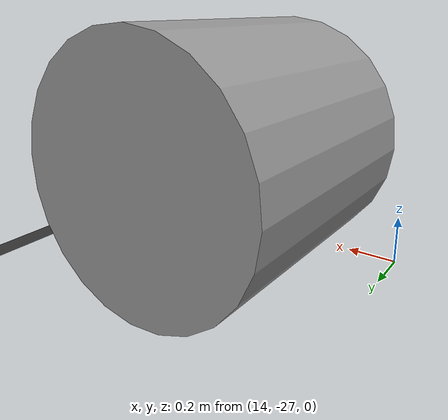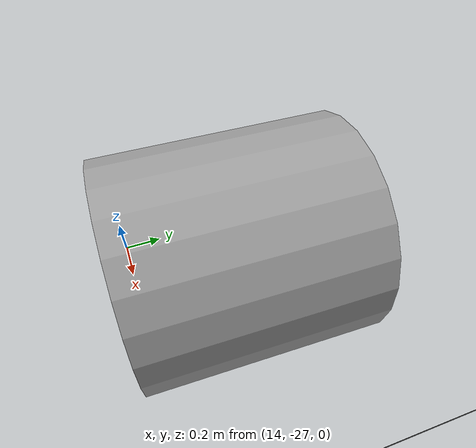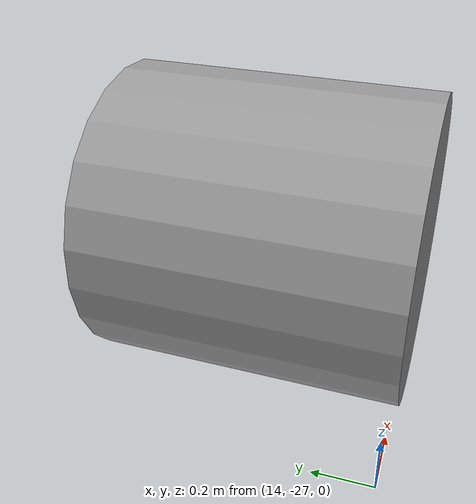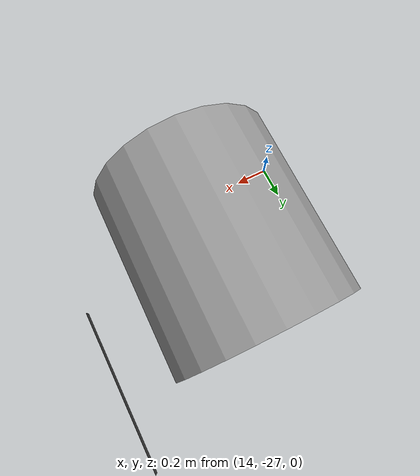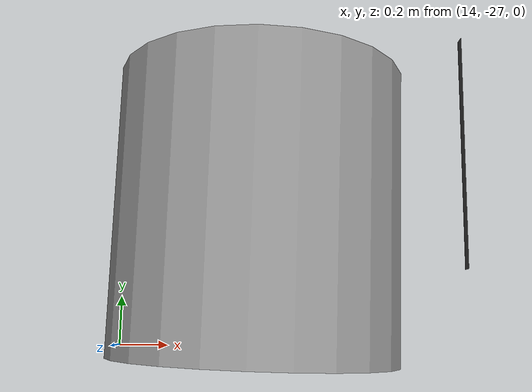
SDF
<sdf version="1.7">
 <world name="default">
  <model name="ground_plane">
   <static>1</static>
   <link name="link">
    <collision name="collision">
     <geometry><plane><normal>0 0 1</normal><size>100 100</size></plane></geometry>
     <friction><ode><mu>100</mu><mu2>50</mu2></ode></friction>
    </collision>
   </link>
  </model>
  <model name="asphalt_plane_74">
   <static>1</static>
   <pose>61.581 -16.664 0 0 -0 0</pose>
   <link name="link">
    <visual name="visual">
     <geometry><box><size>20 20 0.05</size></box></geometry>
     <material>
      <script>
       <uri>model://asphalt_plane/materials/scripts</uri>
       <uri>model://asphalt_plane/materials/textures</uri>
       <name>vrc/asphalt</name>
      </script>
     </material>
    </visual>
   </link>
  </model>
  <model name="unit_cylinder">
   <pose>14.5612 -26.5366 0.5 1.57081 -0.296633 -0.020703</pose>
   <link name="link">
    <inertial>
     <mass>1</mass>
     <inertia><ixx>0.145833</ixx><ixy>0</ixy><ixz>0</ixz><iyy>0.145833</iyy><iyz>0</iyz><izz>0.125</izz></inertia>
    </inertial>
    <collision name="collision">
     <geometry><cylinder><radius>0.5</radius><length>1</length></cylinder></geometry>
    </collision>
    <visual name="visual">
     <geometry><cylinder><radius>0.5</radius><length>1</length></cylinder></geometry>
     <material>
      <script><name>Gazebo/Grey</name><uri>file://media/materials/scripts/gazebo.material</uri></script>
     </material>
    </visual>
    <pose>-1.7763568394e-15 8.881784197e-16 -3.5527136788e-15 1.16636436837e-18 0 5.55111512313e-17</pose>
   </link>
  </model>
 </world>
</sdf>
